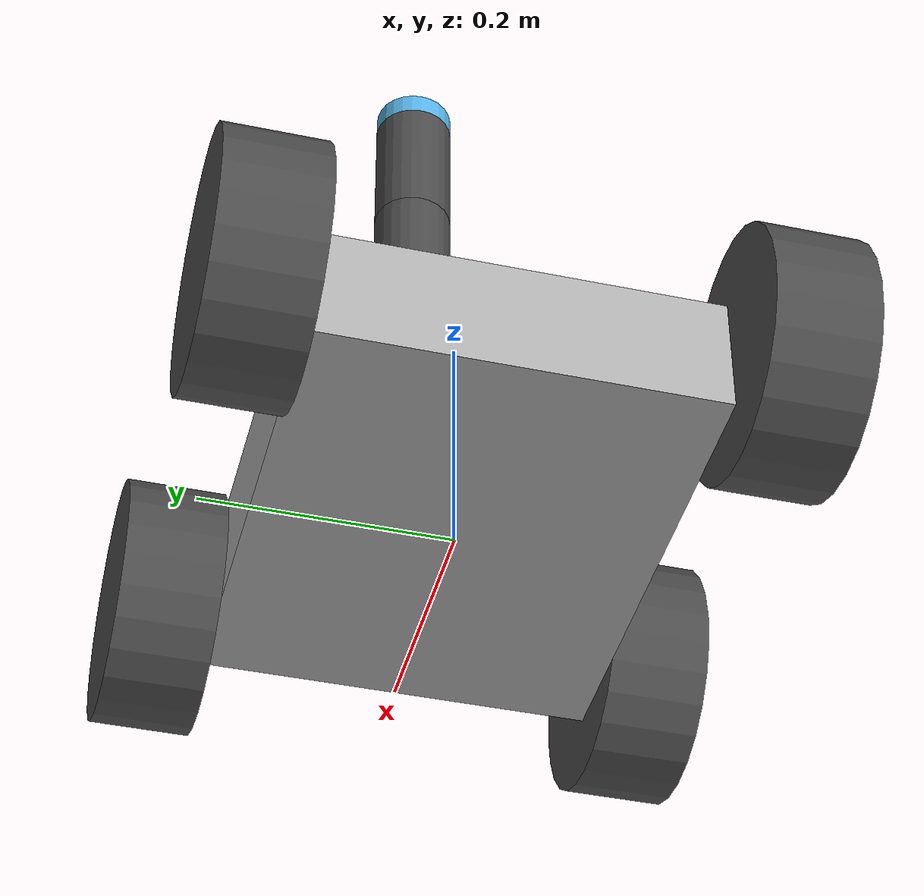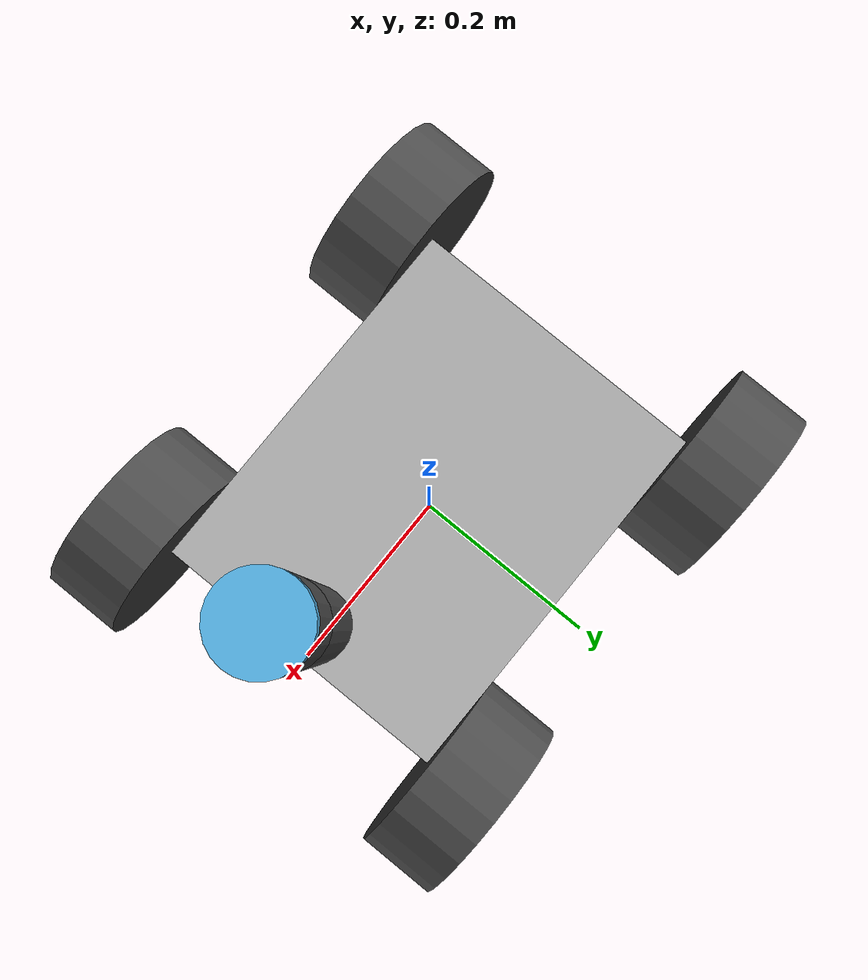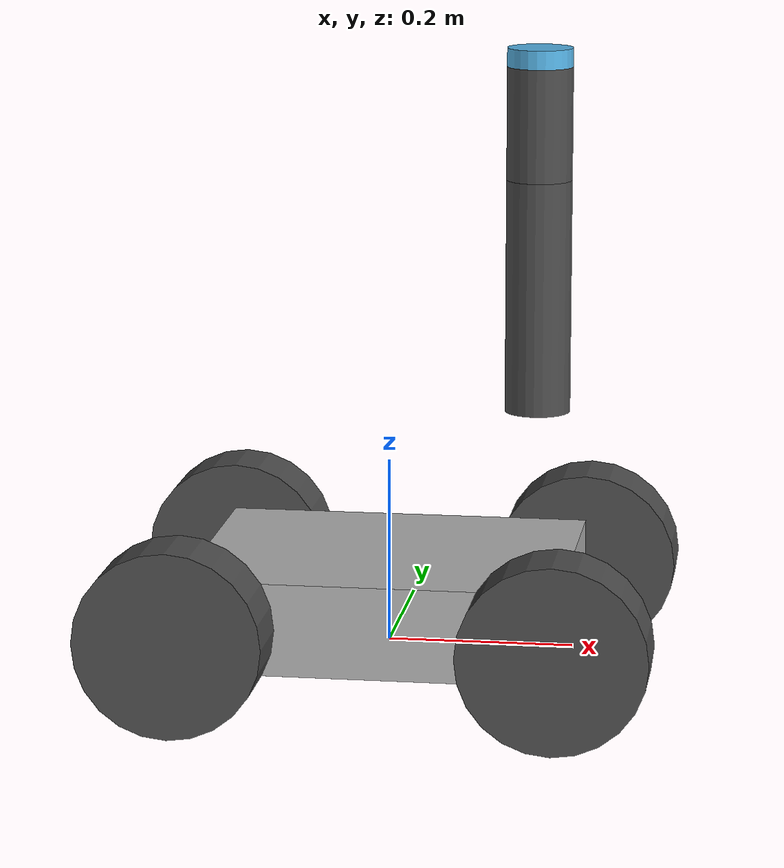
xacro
<?xml version="1.0"?>
<robot xmlns:xacro="http://www.ros.org/wiki/xacro" name="lifter_bot">

  <xacro:arg name="robot_ns" default="lifter1"/>

  <xacro:include filename="$(find sr_description)/urdf/material.urdf.xacro"/>
  <xacro:include filename="$(find sr_description)/urdf/base.urdf.xacro"/>
  <xacro:include filename="$(find sr_description)/urdf/wheel.urdf.xacro"/>
  <xacro:include filename="$(find sr_description)/urdf/arm.urdf.xacro"/>
  <xacro:include filename="$(find sr_description)/urdf/lifter_gazebo.urdf.xacro"/>

  <xacro:create_base/>
  <xacro:create_wheels/>
  <xacro:create_arm/>

  <xacro:gazebo_setup_lift robot_ns="$(arg robot_ns)" />

</robot>

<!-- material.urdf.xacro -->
<robot xmlns:xacro="http://www.ros.org/wiki/xacro" name="materials">

  <!-- ========================================
       MATERIALS AND COLORS
       ======================================== -->

  <material name="grey">
    <color rgba="0.7 0.7 0.7 1.0"/>
  </material>

  <material name="dark_grey">
    <color rgba="0.3 0.3 0.3 1.0"/>
  </material>

  <material name="black">
    <color rgba="0.1 0.1 0.1 1.0"/>
  </material>

  <material name="red">
    <color rgba="1.0 0.0 0.0 1.0"/>
  </material>

  <material name="green">
    <color rgba="0.0 1.0 0.0 1.0"/>
  </material>

  <material name="blue">
    <color rgba="0.0 0.0 1.0 1.0"/>
  </material>

</robot>

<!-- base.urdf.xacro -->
<robot xmlns:xacro="http://www.ros.org/wiki/xacro">

  <xacro:macro name="create_base">

    <!-- Ground reference frame -->
    <link name="base_footprint"/>

    <!-- Actual robot body -->
    <link name="base_link">
      <visual>
        <origin xyz="0 0 0"/>
        <geometry>
          <box size="0.40 0.32 0.1"/>
        </geometry>
        <material name="grey"/>
      </visual>

      <collision>
        <origin xyz="0 0 0"/>
        <geometry>
          <box size="0.40 0.32 0.1"/>
        </geometry>
      </collision>

      <inertial>
        <origin xyz="0 0 0"/>
        <mass value="3.0"/>
        <inertia ixx="0.1" iyy="0.1" izz="0.1"
                ixy="0" ixz="0" iyz="0"/>
      </inertial>
    </link>

    <!-- base_link sits above ground -->
    <joint name="base_footprint_to_base_link" type="fixed">
      <parent link="base_footprint"/>
      <child link="base_link"/>
      <origin xyz="0 0 0.05"/>
    </joint>

    <!-- ================= ARM MOUNT ================= -->

    <link name="arm_base_link"/>

    <joint name="arm_mount_joint" type="fixed">
      <parent link="base_link"/>
      <child link="arm_base_link"/>
      <origin xyz="0.16 0 0.06"/>
    </joint>

  </xacro:macro>

</robot>

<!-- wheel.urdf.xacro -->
<robot xmlns:xacro="http://www.ros.org/wiki/xacro">

  <xacro:macro name="create_wheels">

    <!-- ================= FRONT LEFT WHEEL ================= -->
    <!-- Position: +X (front), +Y (left) -->
    <link name="wheel_fl_link">
      <visual>
        <origin xyz="0 0 0" rpy="1.5708 0 0"/>
        <geometry>
          <cylinder radius="0.1" length="0.08"/>
        </geometry>
        <material name="dark_grey"/>
      </visual>

      <collision>
        <origin xyz="0 0 0" rpy="1.5708 0 0"/>
        <geometry>
          <cylinder radius="0.1" length="0.08"/>
        </geometry>
      </collision>

      <inertial>
        <origin xyz="0 0 0"/>
        <mass value="0.5"/>
        <inertia ixx="0.000417" iyy="0.0005" izz="0.000417" ixy="0" ixz="0" iyz="0"/>
      </inertial>
    </link>

    <!-- Front Left Joint -->
    <joint name="wheel_fl_joint" type="continuous">
      <parent link="base_link"/>
      <child link="wheel_fl_link"/>
      <origin xyz="0.20 0.20 0.0" rpy="0 0 0"/>
      <axis xyz="0 1 0"/>
      <limit effort="100.0" velocity="40.0" lower="-1000.0" upper="1000.0"/>
      <dynamics damping="0.05" friction="0.1"/>
    </joint>

    <!-- ================= FRONT RIGHT WHEEL ================= -->
    <!-- Position: +X (front), -Y (right) -->
    <link name="wheel_fr_link">
      <visual>
        <origin xyz="0 0 0" rpy="1.5708 0 0"/>
        <geometry>
          <cylinder radius="0.1" length="0.08"/>
        </geometry>
        <material name="dark_grey"/>
      </visual>

      <collision>
        <origin xyz="0 0 0" rpy="1.5708 0 0"/>
        <geometry>
          <cylinder radius="0.1" length="0.08"/>
        </geometry>
      </collision>

      <inertial>
        <origin xyz="0 0 0"/>
        <mass value="0.5"/>
        <inertia ixx="0.000417" iyy="0.0005" izz="0.000417" ixy="0" ixz="0" iyz="0"/>
      </inertial>
    </link>

    <!-- Front Right Joint -->
    <joint name="wheel_fr_joint" type="continuous">
      <parent link="base_link"/>
      <child link="wheel_fr_link"/>
      <origin xyz="0.20 -0.20 0.0" rpy="0 0 0"/>
      <axis xyz="0 1 0"/>
      <limit effort="100.0" velocity="40.0" lower="-1000.0" upper="1000.0"/>
      <dynamics damping="0.05" friction="0.1"/>
    </joint>

    <!-- ================= REAR LEFT WHEEL ================= -->
    <!-- Position: -X (back), +Y (left) -->
    <link name="wheel_bl_link">
      <visual>
        <origin xyz="0 0 0" rpy="1.5708 0 0"/>
        <geometry>
          <cylinder radius="0.1" length="0.08"/>
        </geometry>
        <material name="dark_grey"/>
      </visual>

      <collision>
        <origin xyz="0 0 0" rpy="1.5708 0 0"/>
        <geometry>
          <cylinder radius="0.1" length="0.08"/>
        </geometry>
      </collision>

      <inertial>
        <origin xyz="0 0 0"/>
        <mass value="0.5"/>
        <inertia ixx="0.000417" iyy="0.0005" izz="0.000417" ixy="0" ixz="0" iyz="0"/>
      </inertial>
    </link>

    <!-- Rear Left Joint -->
    <joint name="wheel_bl_joint" type="continuous">
      <parent link="base_link"/>
      <child link="wheel_bl_link"/>
      <origin xyz="-0.20 0.20 0.0" rpy="0 0 0"/>
      <axis xyz="0 1 0"/>
      <limit effort="100.0" velocity="40.0" lower="-1000.0" upper="1000.0"/>
      <dynamics damping="0.05" friction="0.1"/>
    </joint>

    <!-- ================= REAR RIGHT WHEEL ================= -->
    <!-- Position: -X (back), -Y (right) -->
    <link name="wheel_br_link">
      <visual>
        <origin xyz="0 0 0" rpy="1.5708 0 0"/>
        <geometry>
          <cylinder radius="0.1" length="0.08"/>
        </geometry>
        <material name="dark_grey"/>
      </visual>

      <collision>
        <origin xyz="0 0 0" rpy="1.5708 0 0"/>
        <geometry>
          <cylinder radius="0.1" length="0.08"/>
        </geometry>
      </collision>

      <inertial>
        <origin xyz="0 0 0"/>
        <mass value="0.5"/>
        <inertia ixx="0.000417" iyy="0.0005" izz="0.000417" ixy="0" ixz="0" iyz="0"/>
      </inertial>
    </link>

    <!-- Rear Right Joint -->
    <joint name="wheel_br_joint" type="continuous">
      <parent link="base_link"/>
      <child link="wheel_br_link"/>
      <origin xyz="-0.20 -0.20 0.0" rpy="0 0 0"/>
      <axis xyz="0 1 0"/>
      <limit effort="100.0" velocity="40.0" lower="-1000.0" upper="1000.0"/>
      <dynamics damping="0.05" friction="0.1"/>
    </joint>

  </xacro:macro>

</robot>

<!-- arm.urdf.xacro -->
<robot xmlns:xacro="http://www.ros.org/wiki/xacro">

  <xacro:macro name="create_arm">

    <!-- Joint 1: Base to Arm Link 1 -->
    <joint name="arm_joint_1" type="revolute">
      <parent link="arm_base_link"/>
      <child link="arm_link_1"/>
      <origin xyz="0 0 0.15" rpy="0 0 0"/>
      <axis xyz="0 1 0"/>
      <limit effort="50.0" velocity="2.0" lower="0.0" upper="1.5708"/>
      <dynamics damping="0.5" friction="0.1"/>
    </joint>

    <!-- ================= ARM LINK 1 ================= -->
    <link name="arm_link_1">
      <visual>
        <origin xyz="0 0 0.125" rpy="0 0 0"/>
        <geometry>
          <cylinder radius="0.035" length="0.25"/>
        </geometry>
        <material name="dark_grey"/>
      </visual>

      <collision>
        <origin xyz="0 0 0.125" rpy="0 0 0"/>
        <geometry>
          <cylinder radius="0.035" length="0.25"/>
        </geometry>
      </collision>

      <inertial>
        <origin xyz="0 0 0.125"/>
        <mass value="0.25"/>
        <inertia ixx="0.001458" iyy="0.001458" izz="0.0003125" ixy="0" ixz="0" iyz="0"/>
      </inertial>
    </link>

    <!-- Joint 2: Arm Link 1 to Arm Link 2 -->
    <joint name="arm_joint_2" type="revolute">
      <parent link="arm_link_1"/>
      <child link="arm_link_2"/>
      <origin xyz="0 0 0.25" rpy="0 0 0"/>
      <axis xyz="0 1 0"/>
      <limit effort="50.0" velocity="2.0" lower="0.0" upper="1.5708"/>
      <dynamics damping="0.5" friction="0.1"/>
    </joint>

    <!-- ================= ARM LINK 2 (GRABBER) ================= -->
    <link name="arm_link_2">
      <visual>
        <origin xyz="0 0 0.06" rpy="0 0 0"/>
        <geometry>
          <cylinder radius="0.035" length="0.12"/>
        </geometry>
        <material name="dark_grey"/>
      </visual>

      <collision>
        <origin xyz="0 0 0.06" rpy="0 0 0"/>
        <geometry>
          <cylinder radius="0.035" length="0.12"/>
        </geometry>
      </collision>

      <inertial>
        <origin xyz="0 0 0.06"/>
        <mass value="0.1"/>
        <inertia ixx="0.0001825" iyy="0.0001825" izz="0.000125" ixy="0" ixz="0" iyz="0"/>
      </inertial>
    </link>

    <joint name="gripper_joint" type="fixed">
      <parent link="arm_link_2"/>
      <child link="gripper_link"/>
      <origin xyz="0 0 0.14" rpy="0 0 0"/>
      <axis xyz="0 0 1"/>
      <limit effort="1.0" velocity="0.01" lower="0" upper="0"/>
      <dynamics damping="100.0" friction="100.0"/>
    </joint>

    <!-- ================= GRIPPER LINK (EMPTY - FOR GRABBING) ================= -->
    <link name="gripper_link">
      <visual>
          <origin xyz="0 0 -0.01" rpy="0 0 0"/>
          <geometry>
            <cylinder radius="0.035" length="0.02"/>
          </geometry>
      </visual>
      <collision>
        <origin xyz="0 0 -0.01" rpy="0 0 0"/>
        <geometry>
          <cylinder radius="0.035" length="0.02"/>
        </geometry>
      </collision>
      <inertial>
        <origin xyz="0 0 -0.01"/>
        <mass value="0.01"/>
        <inertia ixx="0.00001" iyy="0.00001" izz="0.00001" ixy="0" ixz="0" iyz="0"/>
      </inertial>
    </link>

  </xacro:macro>

</robot>
